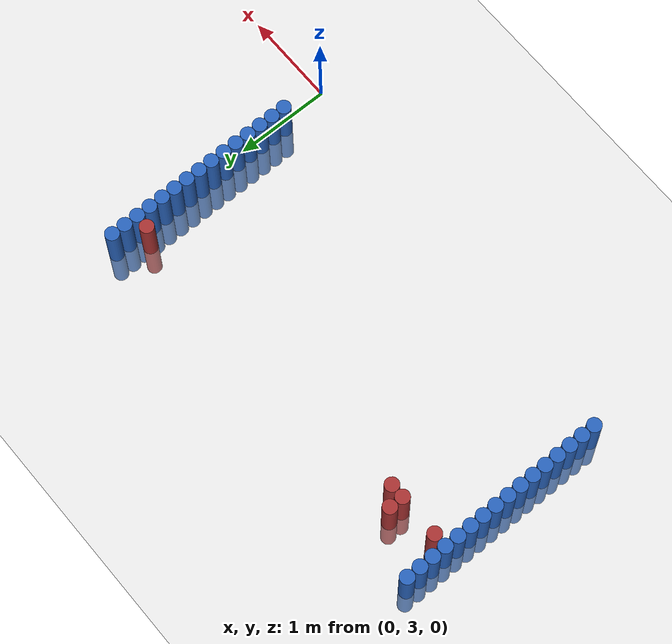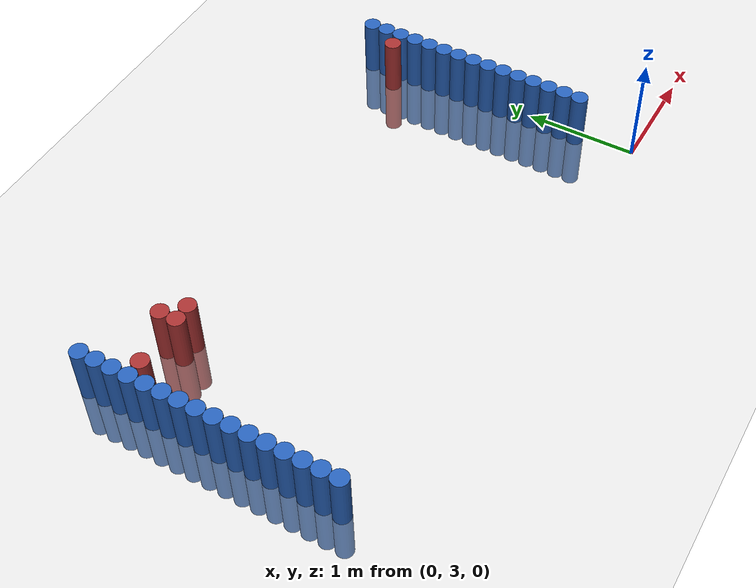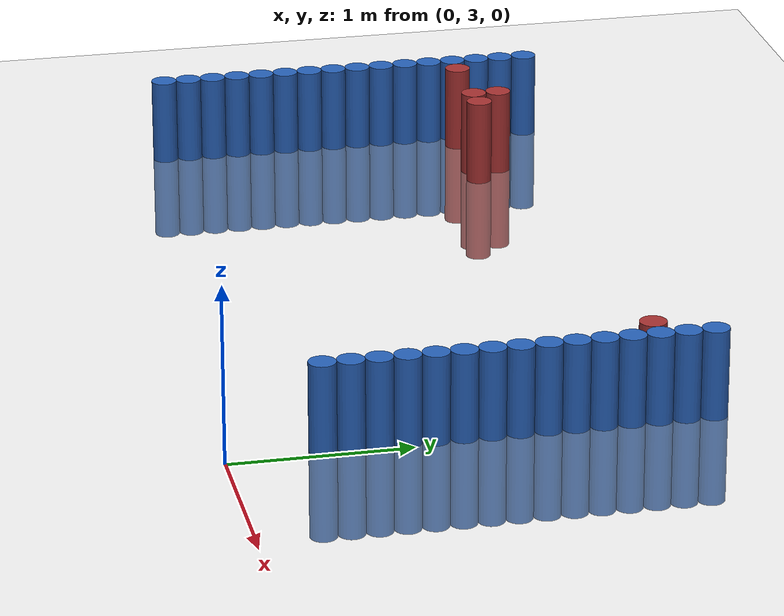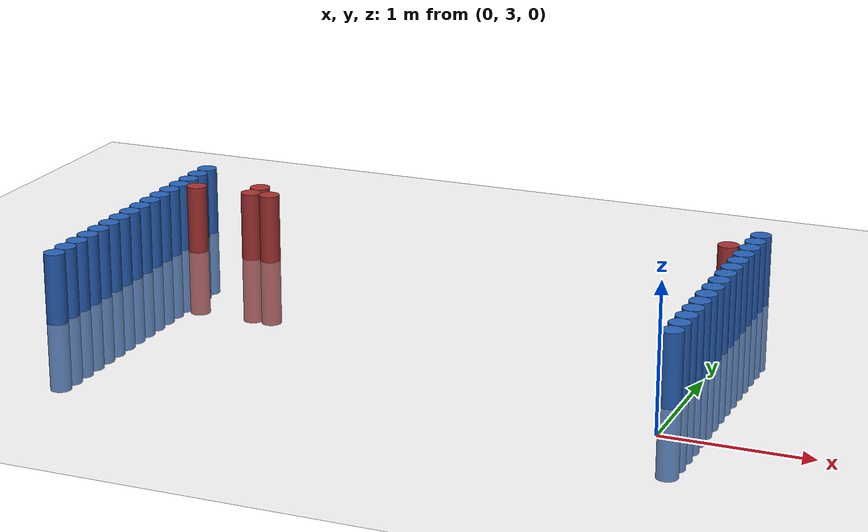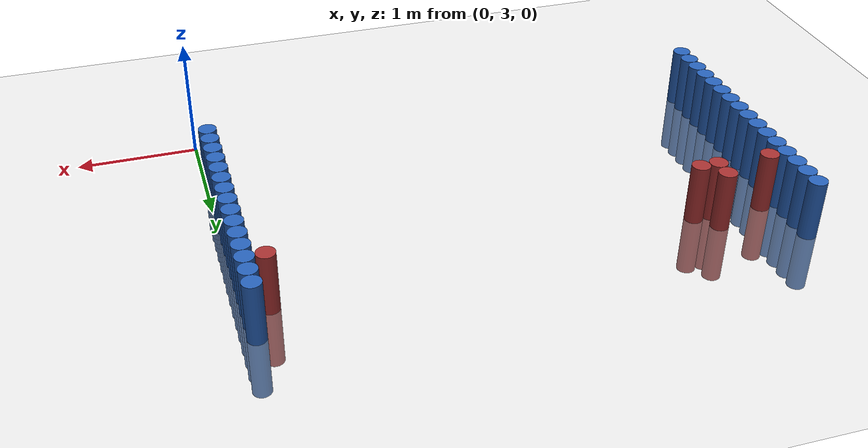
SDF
<sdf version="1.6">
 <world name="default">
  <model name="ground_plane">
   <static>1</static>
   <link name="link">
    <collision name="collision">
     <geometry><plane><normal>0 0 1</normal><size>100 100</size></plane></geometry>
     <surface><friction><ode><mu>100</mu><mu2>50</mu2></ode></friction></surface>
    </collision>
    <visual name="visual">
     <cast_shadows>0</cast_shadows>
     <geometry><plane><normal>0 0 1</normal><size>100 100</size></plane></geometry>
     <material>
      <script><uri>file://media/materials/scripts/gazebo.material</uri><name>Gazebo/Grey</name></script>
     </material>
    </visual>
   </link>
  </model>
  <model name="unit_cylinder_73">
   <static>1</static>
   <pose>-4.425000 3.375000 0.000000 0.000000 0.000000 0.000000</pose>
   <link name="link">
    <inertial>
     <mass>1</mass>
     <inertia><ixx>0.145833</ixx><ixy>0</ixy><ixz>0</ixz><iyy>0.145833</iyy><iyz>0</iyz><izz>0.125</izz></inertia>
    </inertial>
    <collision name="collision">
     <geometry><cylinder><radius>0.075000</radius><length>1</length></cylinder></geometry>
    </collision>
    <visual name="visual">
     <geometry><cylinder><radius>0.075000</radius><length>1</length></cylinder></geometry>
     <material>
      <ambient>0.152000 0.379000 0.720000 1</ambient>
      <diffuse>0.152000 0.379000 0.720000 1</diffuse>
     </material>
     <material>
      <script><name>Gazebo/Grey</name><uri>file://media/materials/scripts/gazebo.material</uri></script>
     </material>
    </visual>
   </link>
  </model>
  <model name="unit_cylinder_74">
   <static>1</static>
   <pose>-0.075000 3.525000 0.000000 0.000000 0.000000 0.000000</pose>
   <link name="link">
    <inertial>
     <mass>1</mass>
     <inertia><ixx>0.145833</ixx><ixy>0</ixy><ixz>0</ixz><iyy>0.145833</iyy><iyz>0</iyz><izz>0.125</izz></inertia>
    </inertial>
    <collision name="collision">
     <geometry><cylinder><radius>0.075000</radius><length>1</length></cylinder></geometry>
    </collision>
    <visual name="visual">
     <geometry><cylinder><radius>0.075000</radius><length>1</length></cylinder></geometry>
     <material>
      <ambient>0.152000 0.379000 0.720000 1</ambient>
      <diffuse>0.152000 0.379000 0.720000 1</diffuse>
     </material>
     <material>
      <script><name>Gazebo/Grey</name><uri>file://media/materials/scripts/gazebo.material</uri></script>
     </material>
    </visual>
   </link>
  </model>
  <model name="unit_cylinder_75">
   <static>1</static>
   <pose>-4.425000 3.525000 0.000000 0.000000 0.000000 0.000000</pose>
   <link name="link">
    <inertial>
     <mass>1</mass>
     <inertia><ixx>0.145833</ixx><ixy>0</ixy><ixz>0</ixz><iyy>0.145833</iyy><iyz>0</iyz><izz>0.125</izz></inertia>
    </inertial>
    <collision name="collision">
     <geometry><cylinder><radius>0.075000</radius><length>1</length></cylinder></geometry>
    </collision>
    <visual name="visual">
     <geometry><cylinder><radius>0.075000</radius><length>1</length></cylinder></geometry>
     <material>
      <ambient>0.152000 0.379000 0.720000 1</ambient>
      <diffuse>0.152000 0.379000 0.720000 1</diffuse>
     </material>
     <material>
      <script><name>Gazebo/Grey</name><uri>file://media/materials/scripts/gazebo.material</uri></script>
     </material>
    </visual>
   </link>
  </model>
  <model name="unit_cylinder_76">
   <static>1</static>
   <pose>-0.075000 3.675000 0.000000 0.000000 0.000000 0.000000</pose>
   <link name="link">
    <inertial>
     <mass>1</mass>
     <inertia><ixx>0.145833</ixx><ixy>0</ixy><ixz>0</ixz><iyy>0.145833</iyy><iyz>0</iyz><izz>0.125</izz></inertia>
    </inertial>
    <collision name="collision">
     <geometry><cylinder><radius>0.075000</radius><length>1</length></cylinder></geometry>
    </collision>
    <visual name="visual">
     <geometry><cylinder><radius>0.075000</radius><length>1</length></cylinder></geometry>
     <material>
      <ambient>0.152000 0.379000 0.720000 1</ambient>
      <diffuse>0.152000 0.379000 0.720000 1</diffuse>
     </material>
     <material>
      <script><name>Gazebo/Grey</name><uri>file://media/materials/scripts/gazebo.material</uri></script>
     </material>
    </visual>
   </link>
  </model>
  <model name="unit_cylinder_77">
   <static>1</static>
   <pose>-4.425000 3.675000 0.000000 0.000000 0.000000 0.000000</pose>
   <link name="link">
    <inertial>
     <mass>1</mass>
     <inertia><ixx>0.145833</ixx><ixy>0</ixy><ixz>0</ixz><iyy>0.145833</iyy><iyz>0</iyz><izz>0.125</izz></inertia>
    </inertial>
    <collision name="collision">
     <geometry><cylinder><radius>0.075000</radius><length>1</length></cylinder></geometry>
    </collision>
    <visual name="visual">
     <geometry><cylinder><radius>0.075000</radius><length>1</length></cylinder></geometry>
     <material>
      <ambient>0.152000 0.379000 0.720000 1</ambient>
      <diffuse>0.152000 0.379000 0.720000 1</diffuse>
     </material>
     <material>
      <script><name>Gazebo/Grey</name><uri>file://media/materials/scripts/gazebo.material</uri></script>
     </material>
    </visual>
   </link>
  </model>
  <model name="unit_cylinder_78">
   <static>1</static>
   <pose>-0.075000 3.825000 0.000000 0.000000 0.000000 0.000000</pose>
   <link name="link">
    <inertial>
     <mass>1</mass>
     <inertia><ixx>0.145833</ixx><ixy>0</ixy><ixz>0</ixz><iyy>0.145833</iyy><iyz>0</iyz><izz>0.125</izz></inertia>
    </inertial>
    <collision name="collision">
     <geometry><cylinder><radius>0.075000</radius><length>1</length></cylinder></geometry>
    </collision>
    <visual name="visual">
     <geometry><cylinder><radius>0.075000</radius><length>1</length></cylinder></geometry>
     <material>
      <ambient>0.152000 0.379000 0.720000 1</ambient>
      <diffuse>0.152000 0.379000 0.720000 1</diffuse>
     </material>
     <material>
      <script><name>Gazebo/Grey</name><uri>file://media/materials/scripts/gazebo.material</uri></script>
     </material>
    </visual>
   </link>
  </model>
  <model name="unit_cylinder_79">
   <static>1</static>
   <pose>-4.425000 3.825000 0.000000 0.000000 0.000000 0.000000</pose>
   <link name="link">
    <inertial>
     <mass>1</mass>
     <inertia><ixx>0.145833</ixx><ixy>0</ixy><ixz>0</ixz><iyy>0.145833</iyy><iyz>0</iyz><izz>0.125</izz></inertia>
    </inertial>
    <collision name="collision">
     <geometry><cylinder><radius>0.075000</radius><length>1</length></cylinder></geometry>
    </collision>
    <visual name="visual">
     <geometry><cylinder><radius>0.075000</radius><length>1</length></cylinder></geometry>
     <material>
      <ambient>0.152000 0.379000 0.720000 1</ambient>
      <diffuse>0.152000 0.379000 0.720000 1</diffuse>
     </material>
     <material>
      <script><name>Gazebo/Grey</name><uri>file://media/materials/scripts/gazebo.material</uri></script>
     </material>
    </visual>
   </link>
  </model>
  <model name="unit_cylinder_80">
   <static>1</static>
   <pose>-0.075000 3.975000 0.000000 0.000000 0.000000 0.000000</pose>
   <link name="link">
    <inertial>
     <mass>1</mass>
     <inertia><ixx>0.145833</ixx><ixy>0</ixy><ixz>0</ixz><iyy>0.145833</iyy><iyz>0</iyz><izz>0.125</izz></inertia>
    </inertial>
    <collision name="collision">
     <geometry><cylinder><radius>0.075000</radius><length>1</length></cylinder></geometry>
    </collision>
    <visual name="visual">
     <geometry><cylinder><radius>0.075000</radius><length>1</length></cylinder></geometry>
     <material>
      <ambient>0.152000 0.379000 0.720000 1</ambient>
      <diffuse>0.152000 0.379000 0.720000 1</diffuse>
     </material>
     <material>
      <script><name>Gazebo/Grey</name><uri>file://media/materials/scripts/gazebo.material</uri></script>
     </material>
    </visual>
   </link>
  </model>
  <model name="unit_cylinder_81">
   <static>1</static>
   <pose>-4.425000 3.975000 0.000000 0.000000 0.000000 0.000000</pose>
   <link name="link">
    <inertial>
     <mass>1</mass>
     <inertia><ixx>0.145833</ixx><ixy>0</ixy><ixz>0</ixz><iyy>0.145833</iyy><iyz>0</iyz><izz>0.125</izz></inertia>
    </inertial>
    <collision name="collision">
     <geometry><cylinder><radius>0.075000</radius><length>1</length></cylinder></geometry>
    </collision>
    <visual name="visual">
     <geometry><cylinder><radius>0.075000</radius><length>1</length></cylinder></geometry>
     <material>
      <ambient>0.152000 0.379000 0.720000 1</ambient>
      <diffuse>0.152000 0.379000 0.720000 1</diffuse>
     </material>
     <material>
      <script><name>Gazebo/Grey</name><uri>file://media/materials/scripts/gazebo.material</uri></script>
     </material>
    </visual>
   </link>
  </model>
  <model name="unit_cylinder_82">
   <static>1</static>
   <pose>-0.075000 4.125000 0.000000 0.000000 0.000000 0.000000</pose>
   <link name="link">
    <inertial>
     <mass>1</mass>
     <inertia><ixx>0.145833</ixx><ixy>0</ixy><ixz>0</ixz><iyy>0.145833</iyy><iyz>0</iyz><izz>0.125</izz></inertia>
    </inertial>
    <collision name="collision">
     <geometry><cylinder><radius>0.075000</radius><length>1</length></cylinder></geometry>
    </collision>
    <visual name="visual">
     <geometry><cylinder><radius>0.075000</radius><length>1</length></cylinder></geometry>
     <material>
      <ambient>0.152000 0.379000 0.720000 1</ambient>
      <diffuse>0.152000 0.379000 0.720000 1</diffuse>
     </material>
     <material>
      <script><name>Gazebo/Grey</name><uri>file://media/materials/scripts/gazebo.material</uri></script>
     </material>
    </visual>
   </link>
  </model>
  <model name="unit_cylinder_83">
   <static>1</static>
   <pose>-4.425000 4.125000 0.000000 0.000000 0.000000 0.000000</pose>
   <link name="link">
    <inertial>
     <mass>1</mass>
     <inertia><ixx>0.145833</ixx><ixy>0</ixy><ixz>0</ixz><iyy>0.145833</iyy><iyz>0</iyz><izz>0.125</izz></inertia>
    </inertial>
    <collision name="collision">
     <geometry><cylinder><radius>0.075000</radius><length>1</length></cylinder></geometry>
    </collision>
    <visual name="visual">
     <geometry><cylinder><radius>0.075000</radius><length>1</length></cylinder></geometry>
     <material>
      <ambient>0.152000 0.379000 0.720000 1</ambient>
      <diffuse>0.152000 0.379000 0.720000 1</diffuse>
     </material>
     <material>
      <script><name>Gazebo/Grey</name><uri>file://media/materials/scripts/gazebo.material</uri></script>
     </material>
    </visual>
   </link>
  </model>
  <model name="unit_cylinder_84">
   <static>1</static>
   <pose>-0.075000 4.275000 0.000000 0.000000 0.000000 0.000000</pose>
   <link name="link">
    <inertial>
     <mass>1</mass>
     <inertia><ixx>0.145833</ixx><ixy>0</ixy><ixz>0</ixz><iyy>0.145833</iyy><iyz>0</iyz><izz>0.125</izz></inertia>
    </inertial>
    <collision name="collision">
     <geometry><cylinder><radius>0.075000</radius><length>1</length></cylinder></geometry>
    </collision>
    <visual name="visual">
     <geometry><cylinder><radius>0.075000</radius><length>1</length></cylinder></geometry>
     <material>
      <ambient>0.152000 0.379000 0.720000 1</ambient>
      <diffuse>0.152000 0.379000 0.720000 1</diffuse>
     </material>
     <material>
      <script><name>Gazebo/Grey</name><uri>file://media/materials/scripts/gazebo.material</uri></script>
     </material>
    </visual>
   </link>
  </model>
  <model name="unit_cylinder_85">
   <static>1</static>
   <pose>-4.425000 4.275000 0.000000 0.000000 0.000000 0.000000</pose>
   <link name="link">
    <inertial>
     <mass>1</mass>
     <inertia><ixx>0.145833</ixx><ixy>0</ixy><ixz>0</ixz><iyy>0.145833</iyy><iyz>0</iyz><izz>0.125</izz></inertia>
    </inertial>
    <collision name="collision">
     <geometry><cylinder><radius>0.075000</radius><length>1</length></cylinder></geometry>
    </collision>
    <visual name="visual">
     <geometry><cylinder><radius>0.075000</radius><length>1</length></cylinder></geometry>
     <material>
      <ambient>0.152000 0.379000 0.720000 1</ambient>
      <diffuse>0.152000 0.379000 0.720000 1</diffuse>
     </material>
     <material>
      <script><name>Gazebo/Grey</name><uri>file://media/materials/scripts/gazebo.material</uri></script>
     </material>
    </visual>
   </link>
  </model>
  <model name="unit_cylinder_86">
   <static>1</static>
   <pose>-0.075000 4.425000 0.000000 0.000000 0.000000 0.000000</pose>
   <link name="link">
    <inertial>
     <mass>1</mass>
     <inertia><ixx>0.145833</ixx><ixy>0</ixy><ixz>0</ixz><iyy>0.145833</iyy><iyz>0</iyz><izz>0.125</izz></inertia>
    </inertial>
    <collision name="collision">
     <geometry><cylinder><radius>0.075000</radius><length>1</length></cylinder></geometry>
    </collision>
    <visual name="visual">
     <geometry><cylinder><radius>0.075000</radius><length>1</length></cylinder></geometry>
     <material>
      <ambient>0.152000 0.379000 0.720000 1</ambient>
      <diffuse>0.152000 0.379000 0.720000 1</diffuse>
     </material>
     <material>
      <script><name>Gazebo/Grey</name><uri>file://media/materials/scripts/gazebo.material</uri></script>
     </material>
    </visual>
   </link>
  </model>
  <model name="unit_cylinder_87">
   <static>1</static>
   <pose>-4.425000 4.425000 0.000000 0.000000 0.000000 0.000000</pose>
   <link name="link">
    <inertial>
     <mass>1</mass>
     <inertia><ixx>0.145833</ixx><ixy>0</ixy><ixz>0</ixz><iyy>0.145833</iyy><iyz>0</iyz><izz>0.125</izz></inertia>
    </inertial>
    <collision name="collision">
     <geometry><cylinder><radius>0.075000</radius><length>1</length></cylinder></geometry>
    </collision>
    <visual name="visual">
     <geometry><cylinder><radius>0.075000</radius><length>1</length></cylinder></geometry>
     <material>
      <ambient>0.152000 0.379000 0.720000 1</ambient>
      <diffuse>0.152000 0.379000 0.720000 1</diffuse>
     </material>
     <material>
      <script><name>Gazebo/Grey</name><uri>file://media/materials/scripts/gazebo.material</uri></script>
     </material>
    </visual>
   </link>
  </model>
  <model name="unit_cylinder_88">
   <static>1</static>
   <pose>-0.075000 4.575000 0.000000 0.000000 0.000000 0.000000</pose>
   <link name="link">
    <inertial>
     <mass>1</mass>
     <inertia><ixx>0.145833</ixx><ixy>0</ixy><ixz>0</ixz><iyy>0.145833</iyy><iyz>0</iyz><izz>0.125</izz></inertia>
    </inertial>
    <collision name="collision">
     <geometry><cylinder><radius>0.075000</radius><length>1</length></cylinder></geometry>
    </collision>
    <visual name="visual">
     <geometry><cylinder><radius>0.075000</radius><length>1</length></cylinder></geometry>
     <material>
      <ambient>0.152000 0.379000 0.720000 1</ambient>
      <diffuse>0.152000 0.379000 0.720000 1</diffuse>
     </material>
     <material>
      <script><name>Gazebo/Grey</name><uri>file://media/materials/scripts/gazebo.material</uri></script>
     </material>
    </visual>
   </link>
  </model>
  <model name="unit_cylinder_89">
   <static>1</static>
   <pose>-4.425000 4.575000 0.000000 0.000000 0.000000 0.000000</pose>
   <link name="link">
    <inertial>
     <mass>1</mass>
     <inertia><ixx>0.145833</ixx><ixy>0</ixy><ixz>0</ixz><iyy>0.145833</iyy><iyz>0</iyz><izz>0.125</izz></inertia>
    </inertial>
    <collision name="collision">
     <geometry><cylinder><radius>0.075000</radius><length>1</length></cylinder></geometry>
    </collision>
    <visual name="visual">
     <geometry><cylinder><radius>0.075000</radius><length>1</length></cylinder></geometry>
     <material>
      <ambient>0.152000 0.379000 0.720000 1</ambient>
      <diffuse>0.152000 0.379000 0.720000 1</diffuse>
     </material>
     <material>
      <script><name>Gazebo/Grey</name><uri>file://media/materials/scripts/gazebo.material</uri></script>
     </material>
    </visual>
   </link>
  </model>
  <model name="unit_cylinder_90">
   <static>1</static>
   <pose>-0.075000 4.725000 0.000000 0.000000 0.000000 0.000000</pose>
   <link name="link">
    <inertial>
     <mass>1</mass>
     <inertia><ixx>0.145833</ixx><ixy>0</ixy><ixz>0</ixz><iyy>0.145833</iyy><iyz>0</iyz><izz>0.125</izz></inertia>
    </inertial>
    <collision name="collision">
     <geometry><cylinder><radius>0.075000</radius><length>1</length></cylinder></geometry>
    </collision>
    <visual name="visual">
     <geometry><cylinder><radius>0.075000</radius><length>1</length></cylinder></geometry>
     <material>
      <ambient>0.152000 0.379000 0.720000 1</ambient>
      <diffuse>0.152000 0.379000 0.720000 1</diffuse>
     </material>
     <material>
      <script><name>Gazebo/Grey</name><uri>file://media/materials/scripts/gazebo.material</uri></script>
     </material>
    </visual>
   </link>
  </model>
  <model name="unit_cylinder_91">
   <static>1</static>
   <pose>-4.425000 4.725000 0.000000 0.000000 0.000000 0.000000</pose>
   <link name="link">
    <inertial>
     <mass>1</mass>
     <inertia><ixx>0.145833</ixx><ixy>0</ixy><ixz>0</ixz><iyy>0.145833</iyy><iyz>0</iyz><izz>0.125</izz></inertia>
    </inertial>
    <collision name="collision">
     <geometry><cylinder><radius>0.075000</radius><length>1</length></cylinder></geometry>
    </collision>
    <visual name="visual">
     <geometry><cylinder><radius>0.075000</radius><length>1</length></cylinder></geometry>
     <material>
      <ambient>0.152000 0.379000 0.720000 1</ambient>
      <diffuse>0.152000 0.379000 0.720000 1</diffuse>
     </material>
     <material>
      <script><name>Gazebo/Grey</name><uri>file://media/materials/scripts/gazebo.material</uri></script>
     </material>
    </visual>
   </link>
  </model>
  <model name="unit_cylinder_92">
   <static>1</static>
   <pose>-0.075000 4.875000 0.000000 0.000000 0.000000 0.000000</pose>
   <link name="link">
    <inertial>
     <mass>1</mass>
     <inertia><ixx>0.145833</ixx><ixy>0</ixy><ixz>0</ixz><iyy>0.145833</iyy><iyz>0</iyz><izz>0.125</izz></inertia>
    </inertial>
    <collision name="collision">
     <geometry><cylinder><radius>0.075000</radius><length>1</length></cylinder></geometry>
    </collision>
    <visual name="visual">
     <geometry><cylinder><radius>0.075000</radius><length>1</length></cylinder></geometry>
     <material>
      <ambient>0.152000 0.379000 0.720000 1</ambient>
      <diffuse>0.152000 0.379000 0.720000 1</diffuse>
     </material>
     <material>
      <script><name>Gazebo/Grey</name><uri>file://media/materials/scripts/gazebo.material</uri></script>
     </material>
    </visual>
   </link>
  </model>
  <model name="unit_cylinder_93">
   <static>1</static>
   <pose>-4.425000 4.875000 0.000000 0.000000 0.000000 0.000000</pose>
   <link name="link">
    <inertial>
     <mass>1</mass>
     <inertia><ixx>0.145833</ixx><ixy>0</ixy><ixz>0</ixz><iyy>0.145833</iyy><iyz>0</iyz><izz>0.125</izz></inertia>
    </inertial>
    <collision name="collision">
     <geometry><cylinder><radius>0.075000</radius><length>1</length></cylinder></geometry>
    </collision>
    <visual name="visual">
     <geometry><cylinder><radius>0.075000</radius><length>1</length></cylinder></geometry>
     <material>
      <ambient>0.152000 0.379000 0.720000 1</ambient>
      <diffuse>0.152000 0.379000 0.720000 1</diffuse>
     </material>
     <material>
      <script><name>Gazebo/Grey</name><uri>file://media/materials/scripts/gazebo.material</uri></script>
     </material>
    </visual>
   </link>
  </model>
  <model name="unit_cylinder_94">
   <static>1</static>
   <pose>-0.075000 5.025000 0.000000 0.000000 0.000000 0.000000</pose>
   <link name="link">
    <inertial>
     <mass>1</mass>
     <inertia><ixx>0.145833</ixx><ixy>0</ixy><ixz>0</ixz><iyy>0.145833</iyy><iyz>0</iyz><izz>0.125</izz></inertia>
    </inertial>
    <collision name="collision">
     <geometry><cylinder><radius>0.075000</radius><length>1</length></cylinder></geometry>
    </collision>
    <visual name="visual">
     <geometry><cylinder><radius>0.075000</radius><length>1</length></cylinder></geometry>
     <material>
      <ambient>0.152000 0.379000 0.720000 1</ambient>
      <diffuse>0.152000 0.379000 0.720000 1</diffuse>
     </material>
     <material>
      <script><name>Gazebo/Grey</name><uri>file://media/materials/scripts/gazebo.material</uri></script>
     </material>
    </visual>
   </link>
  </model>
  <model name="unit_cylinder_95">
   <static>1</static>
   <pose>-4.425000 5.025000 0.000000 0.000000 0.000000 0.000000</pose>
   <link name="link">
    <inertial>
     <mass>1</mass>
     <inertia><ixx>0.145833</ixx><ixy>0</ixy><ixz>0</ixz><iyy>0.145833</iyy><iyz>0</iyz><izz>0.125</izz></inertia>
    </inertial>
    <collision name="collision">
     <geometry><cylinder><radius>0.075000</radius><length>1</length></cylinder></geometry>
    </collision>
    <visual name="visual">
     <geometry><cylinder><radius>0.075000</radius><length>1</length></cylinder></geometry>
     <material>
      <ambient>0.152000 0.379000 0.720000 1</ambient>
      <diffuse>0.152000 0.379000 0.720000 1</diffuse>
     </material>
     <material>
      <script><name>Gazebo/Grey</name><uri>file://media/materials/scripts/gazebo.material</uri></script>
     </material>
    </visual>
   </link>
  </model>
  <model name="unit_cylinder_96">
   <static>1</static>
   <pose>-4.425000 5.175000 0.000000 0.000000 0.000000 0.000000</pose>
   <link name="link">
    <inertial>
     <mass>1</mass>
     <inertia><ixx>0.145833</ixx><ixy>0</ixy><ixz>0</ixz><iyy>0.145833</iyy><iyz>0</iyz><izz>0.125</izz></inertia>
    </inertial>
    <collision name="collision">
     <geometry><cylinder><radius>0.075000</radius><length>1</length></cylinder></geometry>
    </collision>
    <visual name="visual">
     <geometry><cylinder><radius>0.075000</radius><length>1</length></cylinder></geometry>
     <material>
      <ambient>0.152000 0.379000 0.720000 1</ambient>
      <diffuse>0.152000 0.379000 0.720000 1</diffuse>
     </material>
     <material>
      <script><name>Gazebo/Grey</name><uri>file://media/materials/scripts/gazebo.material</uri></script>
     </material>
    </visual>
   </link>
  </model>
  <model name="unit_cylinder_97">
   <static>1</static>
   <pose>-4.425000 5.325000 0.000000 0.000000 0.000000 0.000000</pose>
   <link name="link">
    <inertial>
     <mass>1</mass>
     <inertia><ixx>0.145833</ixx><ixy>0</ixy><ixz>0</ixz><iyy>0.145833</iyy><iyz>0</iyz><izz>0.125</izz></inertia>
    </inertial>
    <collision name="collision">
     <geometry><cylinder><radius>0.075000</radius><length>1</length></cylinder></geometry>
    </collision>
    <visual name="visual">
     <geometry><cylinder><radius>0.075000</radius><length>1</length></cylinder></geometry>
     <material>
      <ambient>0.152000 0.379000 0.720000 1</ambient>
      <diffuse>0.152000 0.379000 0.720000 1</diffuse>
     </material>
     <material>
      <script><name>Gazebo/Grey</name><uri>file://media/materials/scripts/gazebo.material</uri></script>
     </material>
    </visual>
   </link>
  </model>
  <model name="unit_cylinder_98">
   <static>1</static>
   <pose>-4.425000 5.475000 0.000000 0.000000 0.000000 0.000000</pose>
   <link name="link">
    <inertial>
     <mass>1</mass>
     <inertia><ixx>0.145833</ixx><ixy>0</ixy><ixz>0</ixz><iyy>0.145833</iyy><iyz>0</iyz><izz>0.125</izz></inertia>
    </inertial>
    <collision name="collision">
     <geometry><cylinder><radius>0.075000</radius><length>1</length></cylinder></geometry>
    </collision>
    <visual name="visual">
     <geometry><cylinder><radius>0.075000</radius><length>1</length></cylinder></geometry>
     <material>
      <ambient>0.152000 0.379000 0.720000 1</ambient>
      <diffuse>0.152000 0.379000 0.720000 1</diffuse>
     </material>
     <material>
      <script><name>Gazebo/Grey</name><uri>file://media/materials/scripts/gazebo.material</uri></script>
     </material>
    </visual>
   </link>
  </model>
  <model name="unit_cylinder_99">
   <static>1</static>
   <pose>-4.425000 5.625000 0.000000 0.000000 0.000000 0.000000</pose>
   <link name="link">
    <inertial>
     <mass>1</mass>
     <inertia><ixx>0.145833</ixx><ixy>0</ixy><ixz>0</ixz><iyy>0.145833</iyy><iyz>0</iyz><izz>0.125</izz></inertia>
    </inertial>
    <collision name="collision">
     <geometry><cylinder><radius>0.075000</radius><length>1</length></cylinder></geometry>
    </collision>
    <visual name="visual">
     <geometry><cylinder><radius>0.075000</radius><length>1</length></cylinder></geometry>
     <material>
      <ambient>0.152000 0.379000 0.720000 1</ambient>
      <diffuse>0.152000 0.379000 0.720000 1</diffuse>
     </material>
     <material>
      <script><name>Gazebo/Grey</name><uri>file://media/materials/scripts/gazebo.material</uri></script>
     </material>
    </visual>
   </link>
  </model>
  <model name="unit_cylinder_126">
   <static>1</static>
   <pose>-4.275000 5.175000 0.000000 0.000000 0.000000 0.000000</pose>
   <link name="link">
    <inertial>
     <mass>1</mass>
     <inertia><ixx>0.145833</ixx><ixy>0</ixy><ixz>0</ixz><iyy>0.145833</iyy><iyz>0</iyz><izz>0.125</izz></inertia>
    </inertial>
    <collision name="collision">
     <geometry><cylinder><radius>0.075000</radius><length>1</length></cylinder></geometry>
    </collision>
    <visual name="visual">
     <geometry><cylinder><radius>0.075000</radius><length>1</length></cylinder></geometry>
     <material>
      <ambient>0.648000 0.192000 0.192000 1</ambient>
      <diffuse>0.648000 0.192000 0.192000 1</diffuse>
     </material>
     <material>
      <script><name>Gazebo/Grey</name><uri>file://media/materials/scripts/gazebo.material</uri></script>
     </material>
    </visual>
   </link>
  </model>
  <model name="unit_cylinder_142">
   <static>1</static>
   <pose>-3.825000 5.175000 0.000000 0.000000 0.000000 0.000000</pose>
   <link name="link">
    <inertial>
     <mass>1</mass>
     <inertia><ixx>0.145833</ixx><ixy>0</ixy><ixz>0</ixz><iyy>0.145833</iyy><iyz>0</iyz><izz>0.125</izz></inertia>
    </inertial>
    <collision name="collision">
     <geometry><cylinder><radius>0.075000</radius><length>1</length></cylinder></geometry>
    </collision>
    <visual name="visual">
     <geometry><cylinder><radius>0.075000</radius><length>1</length></cylinder></geometry>
     <material>
      <ambient>0.648000 0.192000 0.192000 1</ambient>
      <diffuse>0.648000 0.192000 0.192000 1</diffuse>
     </material>
     <material>
      <script><name>Gazebo/Grey</name><uri>file://media/materials/scripts/gazebo.material</uri></script>
     </material>
    </visual>
   </link>
  </model>
  <model name="unit_cylinder_143">
   <static>1</static>
   <pose>-3.825000 5.325000 0.000000 0.000000 0.000000 0.000000</pose>
   <link name="link">
    <inertial>
     <mass>1</mass>
     <inertia><ixx>0.145833</ixx><ixy>0</ixy><ixz>0</ixz><iyy>0.145833</iyy><iyz>0</iyz><izz>0.125</izz></inertia>
    </inertial>
    <collision name="collision">
     <geometry><cylinder><radius>0.075000</radius><length>1</length></cylinder></geometry>
    </collision>
    <visual name="visual">
     <geometry><cylinder><radius>0.075000</radius><length>1</length></cylinder></geometry>
     <material>
      <ambient>0.648000 0.192000 0.192000 1</ambient>
      <diffuse>0.648000 0.192000 0.192000 1</diffuse>
     </material>
     <material>
      <script><name>Gazebo/Grey</name><uri>file://media/materials/scripts/gazebo.material</uri></script>
     </material>
    </visual>
   </link>
  </model>
  <model name="unit_cylinder_144">
   <static>1</static>
   <pose>-3.675000 5.175000 0.000000 0.000000 0.000000 0.000000</pose>
   <link name="link">
    <inertial>
     <mass>1</mass>
     <inertia><ixx>0.145833</ixx><ixy>0</ixy><ixz>0</ixz><iyy>0.145833</iyy><iyz>0</iyz><izz>0.125</izz></inertia>
    </inertial>
    <collision name="collision">
     <geometry><cylinder><radius>0.075000</radius><length>1</length></cylinder></geometry>
    </collision>
    <visual name="visual">
     <geometry><cylinder><radius>0.075000</radius><length>1</length></cylinder></geometry>
     <material>
      <ambient>0.648000 0.192000 0.192000 1</ambient>
      <diffuse>0.648000 0.192000 0.192000 1</diffuse>
     </material>
     <material>
      <script><name>Gazebo/Grey</name><uri>file://media/materials/scripts/gazebo.material</uri></script>
     </material>
    </visual>
   </link>
  </model>
  <model name="unit_cylinder_178">
   <static>1</static>
   <pose>-0.225000 5.325000 0.000000 0.000000 0.000000 0.000000</pose>
   <link name="link">
    <inertial>
     <mass>1</mass>
     <inertia><ixx>0.145833</ixx><ixy>0</ixy><ixz>0</ixz><iyy>0.145833</iyy><iyz>0</iyz><izz>0.125</izz></inertia>
    </inertial>
    <collision name="collision">
     <geometry><cylinder><radius>0.075000</radius><length>1</length></cylinder></geometry>
    </collision>
    <visual name="visual">
     <geometry><cylinder><radius>0.075000</radius><length>1</length></cylinder></geometry>
     <material>
      <ambient>0.648000 0.192000 0.192000 1</ambient>
      <diffuse>0.648000 0.192000 0.192000 1</diffuse>
     </material>
     <material>
      <script><name>Gazebo/Grey</name><uri>file://media/materials/scripts/gazebo.material</uri></script>
     </material>
    </visual>
   </link>
  </model>
  <model name="unit_cylinder_188">
   <static>1</static>
   <pose>-0.075000 5.175000 0.000000 0.000000 0.000000 0.000000</pose>
   <link name="link">
    <inertial>
     <mass>1</mass>
     <inertia><ixx>0.145833</ixx><ixy>0</ixy><ixz>0</ixz><iyy>0.145833</iyy><iyz>0</iyz><izz>0.125</izz></inertia>
    </inertial>
    <collision name="collision">
     <geometry><cylinder><radius>0.075000</radius><length>1</length></cylinder></geometry>
    </collision>
    <visual name="visual">
     <geometry><cylinder><radius>0.075000</radius><length>1</length></cylinder></geometry>
     <material>
      <ambient>0.152000 0.379000 0.720000 1</ambient>
      <diffuse>0.152000 0.379000 0.720000 1</diffuse>
     </material>
     <material>
      <script><name>Gazebo/Grey</name><uri>file://media/materials/scripts/gazebo.material</uri></script>
     </material>
    </visual>
   </link>
  </model>
  <model name="unit_cylinder_189">
   <static>1</static>
   <pose>-0.075000 5.325000 0.000000 0.000000 0.000000 0.000000</pose>
   <link name="link">
    <inertial>
     <mass>1</mass>
     <inertia><ixx>0.145833</ixx><ixy>0</ixy><ixz>0</ixz><iyy>0.145833</iyy><iyz>0</iyz><izz>0.125</izz></inertia>
    </inertial>
    <collision name="collision">
     <geometry><cylinder><radius>0.075000</radius><length>1</length></cylinder></geometry>
    </collision>
    <visual name="visual">
     <geometry><cylinder><radius>0.075000</radius><length>1</length></cylinder></geometry>
     <material>
      <ambient>0.152000 0.379000 0.720000 1</ambient>
      <diffuse>0.152000 0.379000 0.720000 1</diffuse>
     </material>
     <material>
      <script><name>Gazebo/Grey</name><uri>file://media/materials/scripts/gazebo.material</uri></script>
     </material>
    </visual>
   </link>
  </model>
  <model name="unit_cylinder_190">
   <static>1</static>
   <pose>-0.075000 5.475000 0.000000 0.000000 0.000000 0.000000</pose>
   <link name="link">
    <inertial>
     <mass>1</mass>
     <inertia><ixx>0.145833</ixx><ixy>0</ixy><ixz>0</ixz><iyy>0.145833</iyy><iyz>0</iyz><izz>0.125</izz></inertia>
    </inertial>
    <collision name="collision">
     <geometry><cylinder><radius>0.075000</radius><length>1</length></cylinder></geometry>
    </collision>
    <visual name="visual">
     <geometry><cylinder><radius>0.075000</radius><length>1</length></cylinder></geometry>
     <material>
      <ambient>0.152000 0.379000 0.720000 1</ambient>
      <diffuse>0.152000 0.379000 0.720000 1</diffuse>
     </material>
     <material>
      <script><name>Gazebo/Grey</name><uri>file://media/materials/scripts/gazebo.material</uri></script>
     </material>
    </visual>
   </link>
  </model>
  <model name="unit_cylinder_191">
   <static>1</static>
   <pose>-0.075000 5.625000 0.000000 0.000000 0.000000 0.000000</pose>
   <link name="link">
    <inertial>
     <mass>1</mass>
     <inertia><ixx>0.145833</ixx><ixy>0</ixy><ixz>0</ixz><iyy>0.145833</iyy><iyz>0</iyz><izz>0.125</izz></inertia>
    </inertial>
    <collision name="collision">
     <geometry><cylinder><radius>0.075000</radius><length>1</length></cylinder></geometry>
    </collision>
    <visual name="visual">
     <geometry><cylinder><radius>0.075000</radius><length>1</length></cylinder></geometry>
     <material>
      <ambient>0.152000 0.379000 0.720000 1</ambient>
      <diffuse>0.152000 0.379000 0.720000 1</diffuse>
     </material>
     <material>
      <script><name>Gazebo/Grey</name><uri>file://media/materials/scripts/gazebo.material</uri></script>
     </material>
    </visual>
   </link>
  </model>
 </world>
</sdf>
